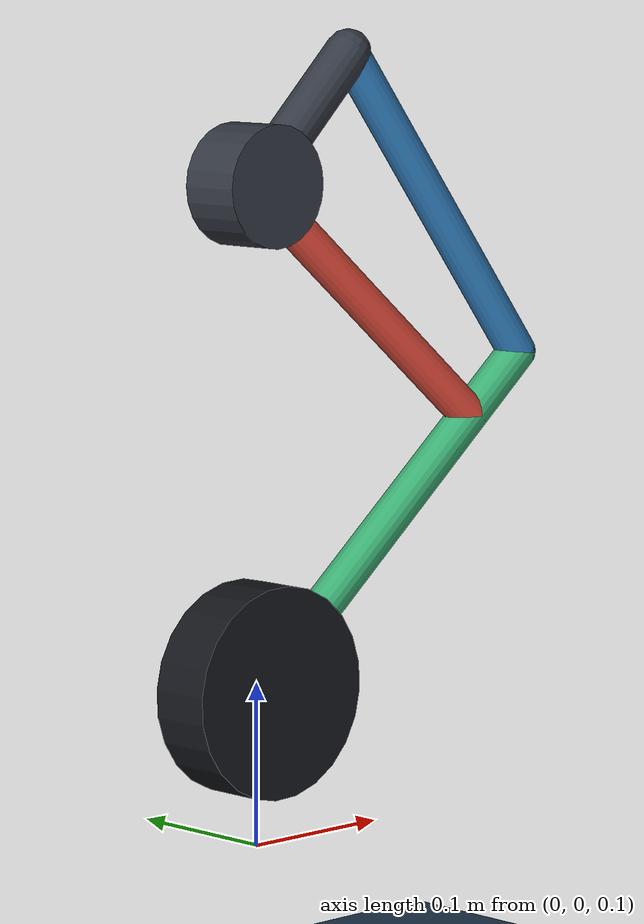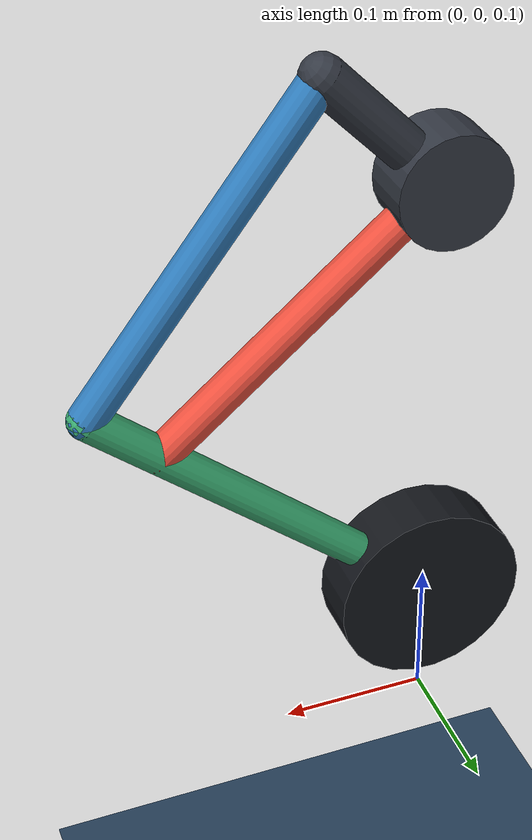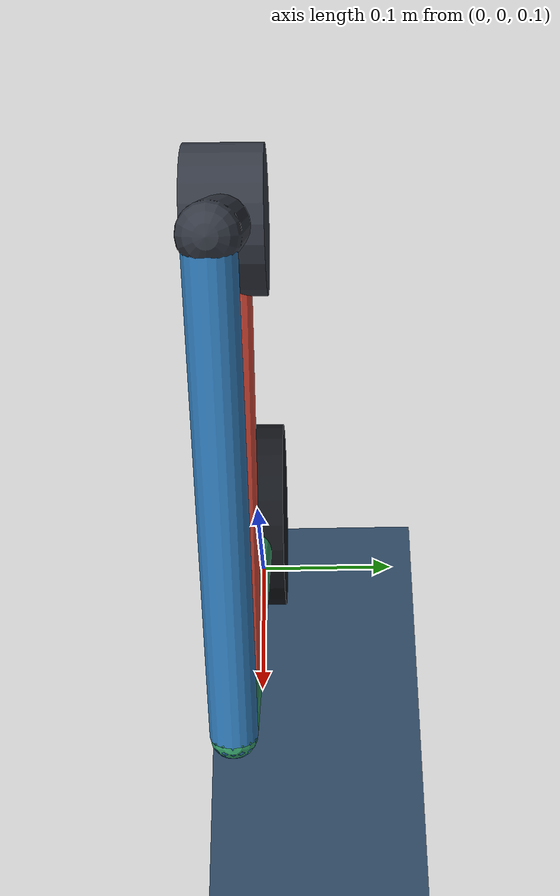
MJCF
<mujoco model="ascento_single_floating_leg">
  <compiler angle="radian" inertiafromgeom="true" balanceinertia="true"/>
  <option timestep="0.002" gravity="0 0 0" integrator="implicitfast"/>

  <visual>
    <global azimuth="90" elevation="0"/>
    <scale jointlength="0.035" jointwidth="0.008"/>
  </visual>

  <default>
    <joint axis="0 -1 0" damping="0.05" armature="0.001"/>
    <geom type="capsule" size="0.012" density="550" contype="0" conaffinity="0"/>
    <site type="sphere" size="0.009" group="2"/>
  </default>

  <asset>
    <texture name="floor_tex" type="2d" builtin="checker" mark="edge"
             width="512" height="512" rgb1="0.20 0.30 0.40"
             rgb2="0.10 0.20 0.30" markrgb="0.80 0.80 0.80"/>
    <material name="floor_mat" texture="floor_tex" texrepeat="4 4"
              texuniform="true" reflectance="0.15"/>
    <material name="frame_mat" rgba="0.20 0.22 0.26 1"/>
    <material name="driver_mat" rgba="0.91 0.31 0.24 1"/>
    <material name="upper_mat" rgba="0.19 0.49 0.74 1"/>
    <material name="lower_mat" rgba="0.23 0.68 0.45 1"/>
    <material name="wheel_mat" rgba="0.08 0.09 0.11 1"/>
  </asset>

  <worldbody>
    <light name="key" pos="0 -1.5 1.5" dir="0 1 -0.5"/>
    <camera name="side" pos="0.05 -1.25 0.40" xyaxes="1 0 0 0 0 1"/>
    <!-- Visible, collision-ready floor. Leg geoms remain contact-disabled. -->
    <geom name="floor" type="plane" pos="0 0 0" size="1 1 0.05"
          material="floor_mat" contype="1" conaffinity="1"/>

    <!-- Reference pose: analytical q = -40 deg. The root is deliberately free. -->
    <body name="base" pos="0 0 0.5">
      <freejoint name="floating_base"/>
      <geom name="frame_AB" fromto="0 0 0 0.0769968574 0 0.0769968574"
            size="0.014" material="frame_mat"/>
      <geom name="hip_housing" type="cylinder" pos="0 0 0" size="0.037 0.020"
            quat="0.7071067812 0.7071067812 0 0" material="frame_mat"/>
      <site name="point_A" pos="0 0 0" rgba="1 0.3 0.2 1"/>
      <site name="point_B" pos="0.0769968574 0 0.0769968574" rgba="1 0.8 0.1 1"/>

      <body name="driver_AD" quat="0.9396926208 0 0.3420201433 0">
        <joint name="hip_drive" range="-0.4363323130 0.4363323130"/>
        <geom name="link_AD" fromto="0 0 0 0.238 0 0" material="driver_mat"/>
        <site name="point_D" pos="0.238 0 0" rgba="1 0.3 0.2 1"/>

        <body name="lower_DCE" pos="0.238 0 0"
              quat="0.7655608359 0 -0.6433635104 0">
          <joint name="inner_passive" range="-1.2 1.2"/>
          <geom name="link_DCE" fromto="-0.235 0 0 0.057 0 0" material="lower_mat"/>
          <site name="point_C_lower" pos="0.057 0 0" rgba="0.9 0.2 0.9 1"/>
          <site name="point_E" pos="-0.235 0 0" rgba="0.2 1 0.4 1"/>
          <geom name="wheel" type="cylinder" pos="-0.235 0 0" size="0.065 0.020"
                quat="0.7071067812 0.7071067812 0 0" material="wheel_mat"/>
        </body>
      </body>

      <body name="upper_BC" pos="0.0769968574 0 0.0769968574"
            quat="0.8973219461 0 0.4413766249 0">
        <joint name="pin_passive" range="-1.2 1.2"/>
        <geom name="link_BC" fromto="0 0 0 0.244 0 0" material="upper_mat"/>
        <site name="point_C_upper" pos="0.244 0 0" rgba="0.9 0.2 0.9 0.45"/>
      </body>
    </body>
  </worldbody>

  <equality>
    <connect name="four_bar_closure" site1="point_C_lower" site2="point_C_upper"
             solref="0.002 1" solimp="0.95 0.99 0.001"/>
  </equality>

  <actuator>
    <position name="hip_position" joint="hip_drive" kp="80"
              ctrlrange="-0.4363323130 0.4363323130" forcerange="-40 40"/>
  </actuator>
</mujoco>
